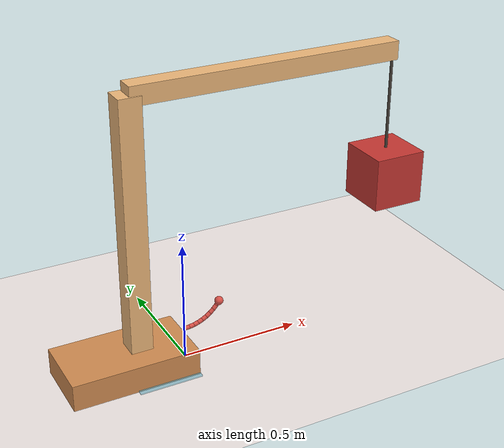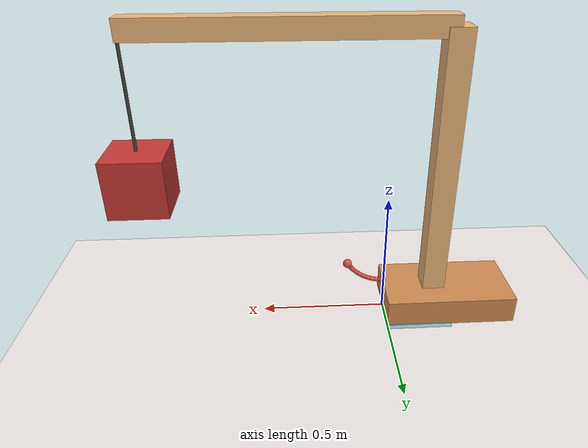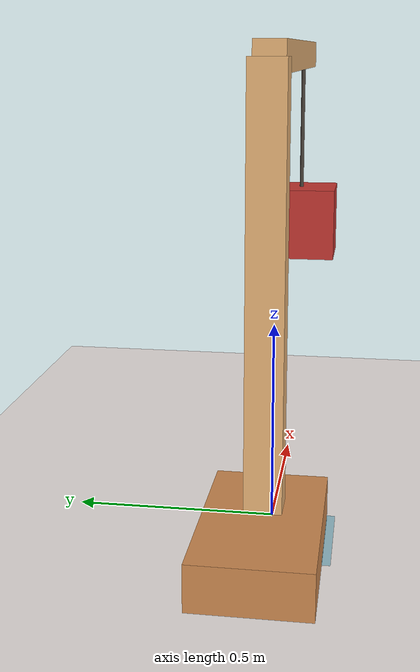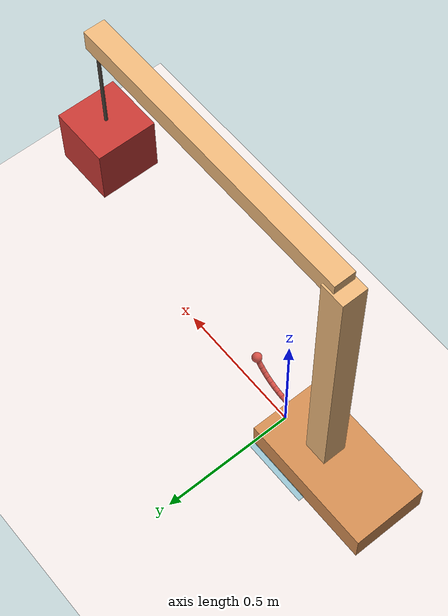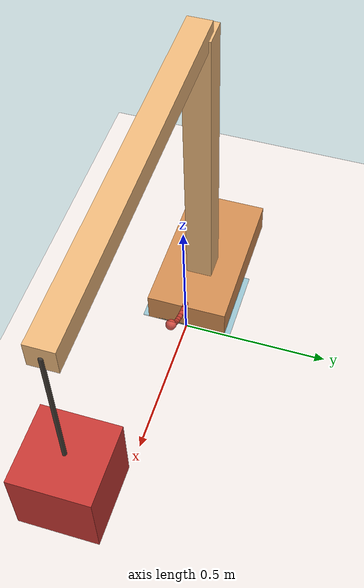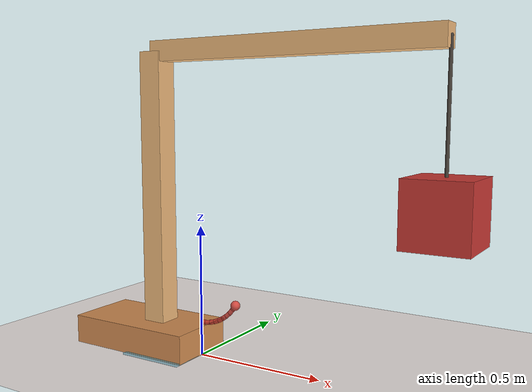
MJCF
<mujoco model="crane_lifting_simple">
  <compiler angle="radian" coordinate="local" autolimits="true"/>
  <option timestep="0.001" gravity="0 0 -9.81" integrator="implicitfast"
          impratio="3" cone="elliptic"/>

  <visual>
    <headlight diffuse="0 0 0" ambient="0.50 0.48 0.55" specular="0 0 0"/>
    <rgba haze="0.94 0.91 0.90 1"/>
    <global azimuth="120" elevation="-15" offwidth="1920" offheight="1080" fovy="32"/>
    <quality shadowsize="8192" offsamples="8"/>
    <map shadowclip="6" shadowscale="0.7"/>
  </visual>

  <asset>
    <texture type="skybox" builtin="flat"
             rgb1="0.74 0.68 0.86" rgb2="0.74 0.68 0.86"
             width="512" height="512" mark="none" markrgb="0 0 0"/>
    <material name="floor_mat" rgba="0.94 0.91 0.90 1" specular="0" shininess="0"/>
    <material name="wood" rgba="0.93 0.72 0.48 1" specular="0.12" shininess="0.12"/>
    <material name="wood_dark" rgba="0.82 0.55 0.32 1" specular="0.12" shininess="0.12"/>
    <material name="cable_mat" rgba="0.28 0.25 0.22 1" specular="0" shininess="0"/>
    <material name="load_mat" rgba="0.78 0.22 0.20 1" specular="0.35" shininess="0.4"/>
  </asset>

  <default>
    <geom friction="0.6 0.04 0.005" solref="0.003 1" solimp="0.97 0.99 0.001"/>
  </default>

  <worldbody>
    <light pos="0 0 10" dir="-0.30 0.55 -1" directional="true" castshadow="true"
           diffuse="0.85 0.82 0.78" specular="0.15 0.15 0.15"/>
    <light pos="0 0 6" dir="0.40 -0.30 -1" directional="true" castshadow="false"
           diffuse="0.28 0.28 0.34" specular="0 0 0"/>

    <geom name="floor" type="plane" size="40 40 0.1" material="floor_mat"/>

    <!-- Fixed support-region marker (base half-width behind pivot) -->
    <geom name="support_marker" type="box" pos="-0.1300 0 0.003"
          size="0.1300 0.16 0.003"
          rgba="0.35 0.68 0.78 0.55" contype="0" conaffinity="0"/>
    <geom name="support_tick" type="box" pos="-0.2600 0 0.006"
          size="0.012 0.12 0.006" rgba="0.30 0.62 0.72 0.85"
          contype="0" conaffinity="0"/>

    <!-- Pivot at front-bottom edge: x=0, z=0 -->
    <body name="crane" pos="0 0 0">
      <joint name="tip" type="hinge" axis="0 1 0"
             damping="22.0" armature="12.0"
             limited="true" range="0 0.458837"/>

      <geom name="base" type="box"
            size="0.2600 0.1400 0.0550"
            pos="-0.2600 0 0.0550"
            material="wood_dark" mass="0.1300"
            contype="0" conaffinity="0"/>

      <geom name="pole" type="box"
            size="0.0450 0.0450 0.5200"
            pos="-0.2000 0 0.6300"
            material="wood" mass="0.10"
            contype="0" conaffinity="0"/>

      <geom name="arm" type="box"
            size="0.5600 0.0380 0.0380"
            pos="0.3600 0 1.1500"
            material="wood" mass="0.08"
            contype="0" conaffinity="0"/>

      <geom name="cable" type="capsule"
            fromto="0.9200 0 1.1500 0.9200 0 0.7300"
            size="0.006" material="cable_mat"
            contype="0" conaffinity="0"/>

      <geom name="load" type="box"
            size="0.1100 0.1100 0.1100"
            pos="0.9200 0 0.6200"
            material="load_mat" mass="1.0000"
            friction="0.9 0.05 0.005" solref="0.003 1" solimp="0.97 0.99 0.001"/>

      <geom name="tq_0" type="capsule" fromto="0.0000 0.0000 0.1300 0.0204 0.0000 0.1312" size="0.009" rgba="0.88 0.28 0.24 0.88" contype="0" conaffinity="0"/>
      <geom name="tq_1" type="capsule" fromto="0.0204 0.0000 0.1312 0.0405 0.0000 0.1346" size="0.009" rgba="0.88 0.28 0.24 0.88" contype="0" conaffinity="0"/>
      <geom name="tq_2" type="capsule" fromto="0.0405 0.0000 0.1346 0.0601 0.0000 0.1403" size="0.009" rgba="0.88 0.28 0.24 0.88" contype="0" conaffinity="0"/>
      <geom name="tq_3" type="capsule" fromto="0.0601 0.0000 0.1403 0.0789 0.0000 0.1482" size="0.009" rgba="0.88 0.28 0.24 0.88" contype="0" conaffinity="0"/>
      <geom name="tq_4" type="capsule" fromto="0.0789 0.0000 0.1482 0.0967 0.0000 0.1582" size="0.009" rgba="0.88 0.28 0.24 0.88" contype="0" conaffinity="0"/>
      <geom name="tq_5" type="capsule" fromto="0.0967 0.0000 0.1582 0.1133 0.0000 0.1701" size="0.009" rgba="0.88 0.28 0.24 0.88" contype="0" conaffinity="0"/>
      <geom name="tq_6" type="capsule" fromto="0.1133 0.0000 0.1701 0.1284 0.0000 0.1838" size="0.009" rgba="0.88 0.28 0.24 0.88" contype="0" conaffinity="0"/>
      <geom name="tq_7" type="capsule" fromto="0.1284 0.0000 0.1838 0.1418 0.0000 0.1992" size="0.009" rgba="0.88 0.28 0.24 0.88" contype="0" conaffinity="0"/>
      <geom name="tq_8" type="capsule" fromto="0.1418 0.0000 0.1992 0.1535 0.0000 0.2160" size="0.009" rgba="0.88 0.28 0.24 0.88" contype="0" conaffinity="0"/>
      <geom name="tq_head" type="sphere" pos="0.1535 0.0000 0.2160" size="0.018" rgba="0.88 0.28 0.24 0.88" contype="0" conaffinity="0"/>

    </body>

    <camera name="cam" pos="0.45 -4.0 0.88"
            fovy="32" xyaxes="1 0 0   0 0 1"/>
  </worldbody>
</mujoco>
